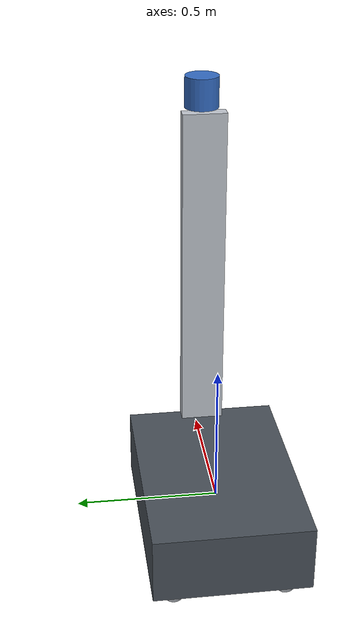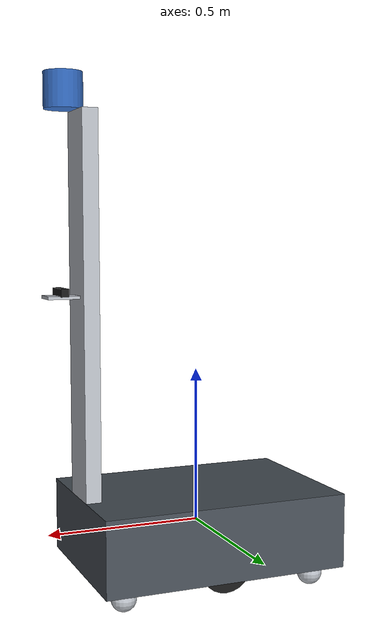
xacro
<?xml version="1.0"?>
<robot name="traymover" xmlns:xacro="http://www.ros.org/wiki/xacro">
  <xacro:property name="body_length" value="0.80"/>
  <xacro:property name="body_width" value="0.55"/>
  <xacro:property name="body_height" value="0.24"/>
  <xacro:property name="body_center_z" value="0.20"/>

  <xacro:property name="wheel_radius" value="0.085"/>
  <xacro:property name="wheel_width" value="0.04"/>
  <xacro:property name="wheel_y_offset" value="0.2275"/>
  <xacro:property name="wheel_z_offset" value="-0.085"/>

  <xacro:property name="caster_radius" value="0.04"/>
  <xacro:property name="caster_front_x" value="0.32"/>
  <xacro:property name="caster_rear_x" value="-0.32"/>
  <xacro:property name="caster_y_offset" value="0.195"/>
  <xacro:property name="caster_z_offset" value="-0.16"/>

  <xacro:property name="mast_thickness" value="0.05"/>
  <xacro:property name="mast_width" value="0.155"/>
  <xacro:property name="mast_height" value="1.20"/>
  <xacro:property name="mast_x" value="0.375"/>
  <xacro:property name="mast_z" value="0.71"/>

  <xacro:property name="lidar_radius" value="0.06"/>
  <xacro:property name="lidar_height" value="0.11"/>
  <xacro:property name="lidar_x" value="0.375"/>
  <xacro:property name="lidar_z" value="1.365"/>

  <xacro:property name="camera_mount_length" value="0.10"/>
  <xacro:property name="camera_mount_width" value="0.08"/>
  <xacro:property name="camera_mount_thickness" value="0.01"/>
  <xacro:property name="camera_mount_x" value="0.45"/>
  <xacro:property name="camera_mount_z" value="0.745"/>

  <xacro:property name="camera_depth" value="0.025"/>
  <xacro:property name="camera_width" value="0.10"/>
  <xacro:property name="camera_height" value="0.025"/>
  <xacro:property name="camera_z_from_mount" value="0.015"/>
  <xacro:property name="imu_marker_length" value="0.08"/>
  <xacro:property name="imu_marker_width" value="0.04"/>
  <xacro:property name="imu_marker_height" value="0.02"/>

  <material name="traymover_gray">
    <color rgba="0.28 0.31 0.34 1.0"/>
  </material>

  <material name="traymover_black">
    <color rgba="0.10 0.10 0.10 1.0"/>
  </material>

  <material name="traymover_silver">
    <color rgba="0.75 0.77 0.80 1.0"/>
  </material>

  <material name="traymover_blue">
    <color rgba="0.20 0.42 0.76 1.0"/>
  </material>

  <link name="base_link">
    <visual>
      <origin xyz="0 0 -0.01" rpy="0 0 0"/>
      <geometry>
        <box size="${body_length} ${body_width} ${body_height}"/>
      </geometry>
      <material name="traymover_gray"/>
    </visual>
    <collision>
      <origin xyz="0 0 -0.01" rpy="0 0 0"/>
      <geometry>
        <box size="${body_length} ${body_width} ${body_height}"/>
      </geometry>
    </collision>
  </link>

  <link name="imu_link">
    <visual>
      <origin xyz="0 0 0" rpy="0 0 0"/>
      <geometry>
        <box size="${imu_marker_length} ${imu_marker_width} ${imu_marker_height}"/>
      </geometry>
      <material name="traymover_blue"/>
    </visual>
  </link>

  <joint name="imu_joint" type="fixed">
    <origin xyz="0 0 ${-body_height / 2.0}" rpy="0 0 0"/>
    <parent link="base_link"/>
    <child link="imu_link"/>
  </joint>

  <xacro:macro name="drive_wheel" params="name x y z axis_y">
    <link name="${name}">
      <visual>
        <origin xyz="0 0 0" rpy="${pi / 2.0} 0 0"/>
        <geometry>
          <cylinder radius="${wheel_radius}" length="${wheel_width}"/>
        </geometry>
        <material name="traymover_black"/>
      </visual>
      <collision>
        <origin xyz="0 0 0" rpy="${pi / 2.0} 0 0"/>
        <geometry>
          <cylinder radius="${wheel_radius}" length="${wheel_width}"/>
        </geometry>
      </collision>
    </link>

    <joint name="${name}_joint" type="continuous">
      <origin xyz="${x} ${y} ${z}" rpy="0 0 0"/>
      <parent link="base_link"/>
      <child link="${name}"/>
      <axis xyz="0 ${axis_y} 0"/>
    </joint>
  </xacro:macro>

  <xacro:macro name="caster_wheel" params="name x y z">
    <link name="${name}">
      <visual>
        <origin xyz="0 0 0" rpy="0 0 0"/>
        <geometry>
          <sphere radius="${caster_radius}"/>
        </geometry>
        <material name="traymover_silver"/>
      </visual>
      <collision>
        <origin xyz="0 0 0" rpy="0 0 0"/>
        <geometry>
          <sphere radius="${caster_radius}"/>
        </geometry>
      </collision>
    </link>

    <joint name="${name}_joint" type="fixed">
      <origin xyz="${x} ${y} ${z}" rpy="0 0 0"/>
      <parent link="base_link"/>
      <child link="${name}"/>
    </joint>
  </xacro:macro>

  <xacro:drive_wheel
    name="left_wheel_link"
    x="0.0"
    y="${wheel_y_offset}"
    z="${wheel_z_offset}"
    axis_y="1"/>

  <xacro:drive_wheel
    name="right_wheel_link"
    x="0.0"
    y="${-wheel_y_offset}"
    z="${wheel_z_offset}"
    axis_y="-1"/>

  <xacro:caster_wheel
    name="front_left_caster_link"
    x="${caster_front_x}"
    y="${caster_y_offset}"
    z="${caster_z_offset}"/>

  <xacro:caster_wheel
    name="front_right_caster_link"
    x="${caster_front_x}"
    y="${-caster_y_offset}"
    z="${caster_z_offset}"/>

  <xacro:caster_wheel
    name="rear_left_caster_link"
    x="${caster_rear_x}"
    y="${caster_y_offset}"
    z="${caster_z_offset}"/>

  <xacro:caster_wheel
    name="rear_right_caster_link"
    x="${caster_rear_x}"
    y="${-caster_y_offset}"
    z="${caster_z_offset}"/>

  <link name="sensor_mast_link">
    <visual>
      <origin xyz="0 0 0" rpy="0 0 0"/>
      <geometry>
        <box size="${mast_thickness} ${mast_width} ${mast_height}"/>
      </geometry>
      <material name="traymover_silver"/>
    </visual>
    <collision>
      <origin xyz="0 0 0" rpy="0 0 0"/>
      <geometry>
        <box size="${mast_thickness} ${mast_width} ${mast_height}"/>
      </geometry>
    </collision>
  </link>

  <joint name="sensor_mast_joint" type="fixed">
    <origin xyz="${mast_x} 0 ${mast_z}" rpy="0 0 0"/>
    <parent link="base_link"/>
    <child link="sensor_mast_link"/>
  </joint>

  <link name="laser">
    <visual>
      <origin xyz="0 0 0" rpy="0 0 0"/>
      <geometry>
        <cylinder radius="${lidar_radius}" length="${lidar_height}"/>
      </geometry>
      <material name="traymover_blue"/>
    </visual>
    <collision>
      <origin xyz="0 0 0" rpy="0 0 0"/>
      <geometry>
        <cylinder radius="${lidar_radius}" length="${lidar_height}"/>
      </geometry>
    </collision>
  </link>

  <joint name="laser_joint" type="fixed">
    <origin xyz="0.06 0 ${lidar_z - mast_z}" rpy="0 0 0"/>
    <parent link="sensor_mast_link"/>
    <child link="laser"/>
  </joint>

  <link name="camera_mount_link">
    <visual>
      <origin xyz="0 0 0" rpy="0 0 0"/>
      <geometry>
        <box size="${camera_mount_length} ${camera_mount_width} ${camera_mount_thickness}"/>
      </geometry>
      <material name="traymover_silver"/>
    </visual>
    <collision>
      <origin xyz="0 0 0" rpy="0 0 0"/>
      <geometry>
        <box size="${camera_mount_length} ${camera_mount_width} ${camera_mount_thickness}"/>
      </geometry>
    </collision>
  </link>

  <joint name="camera_mount_joint" type="fixed">
    <origin xyz="${camera_mount_x} 0 ${camera_mount_z}" rpy="0 0 0"/>
    <parent link="base_link"/>
    <child link="camera_mount_link"/>
  </joint>

  <link name="camera_link">
    <visual>
      <origin xyz="0 0 0" rpy="0 0 0"/>
      <geometry>
        <box size="${camera_depth} ${camera_width} ${camera_height}"/>
      </geometry>
      <material name="traymover_black"/>
    </visual>
    <collision>
      <origin xyz="0 0 0" rpy="0 0 0"/>
      <geometry>
        <box size="${camera_depth} ${camera_width} ${camera_height}"/>
      </geometry>
    </collision>
  </link>

  <joint name="camera_joint" type="fixed">
    <origin xyz="0 0 ${camera_z_from_mount}" rpy="0 0 0"/>
    <parent link="camera_mount_link"/>
    <child link="camera_link"/>
  </joint>
</robot>
